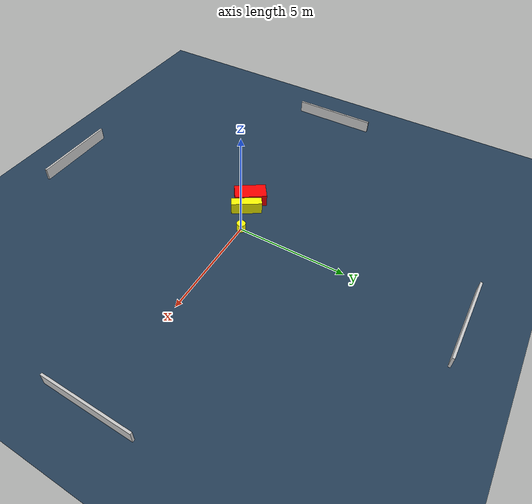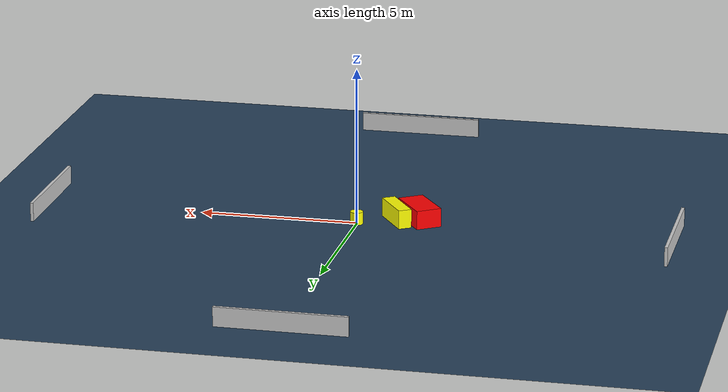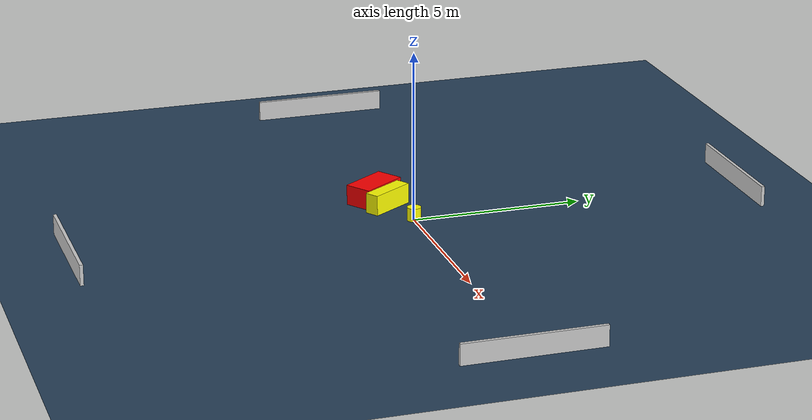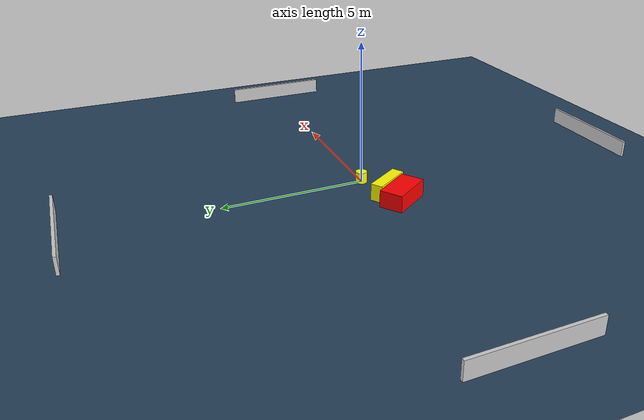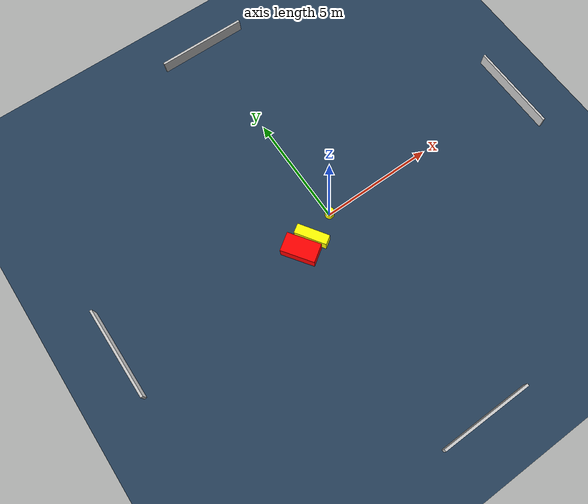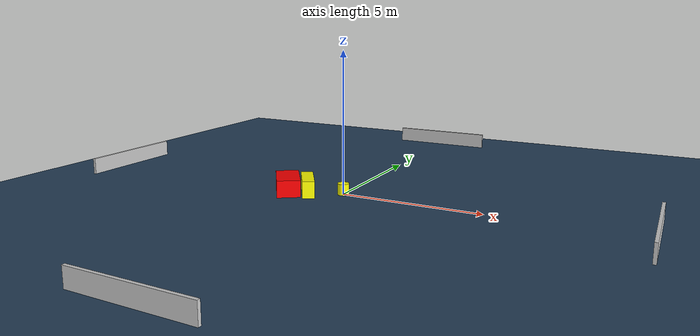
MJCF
<?xml version="1.0" ?>
<mujoco model="generated_environment">
  <option timestep="0.01" integrator="RK4" cone="elliptic"/>
  <default>
    <geom density="1"/>
  </default>
  <asset>
    <texture builtin="gradient" height="3072" name="skybox" rgb1="0.3 0.5 0.7" rgb2="0 0 0" type="skybox" width="512"/>
    <texture builtin="checker" height="300" name="groundplane" rgb1="0.2 0.3 0.4" rgb2="0.1 0.2 0.3" type="2d" width="300"/>
    <material name="groundplane" reflectance="0.2" texrepeat="5 5" texture="groundplane"/>
  </asset>
  <worldbody>
    <light dir="0 0 -1" directional="true" pos="0 0 1.5"/>
    <geom condim="3" friction="0.5 0.005 0.001" material="groundplane" name="floor" pos="0 0 0" size="0 0 0.05" type="plane"/>
    <body name="walls">
      <geom name="wall_1" condim="4" pos="-10.0 0.0 0.3" rgba="0.800000011920929 0.800000011920929 0.800000011920929 1.0" size="0.05 2.0 0.3" type="box"/>
      <geom name="wall_2" condim="4" pos="10.0 0.0 0.3" rgba="0.800000011920929 0.800000011920929 0.800000011920929 1.0" size="0.05 2.0 0.3" type="box"/>
      <geom name="wall_3" condim="4" pos="0.0 -10.0 0.3" rgba="0.800000011920929 0.800000011920929 0.800000011920929 1.0" size="2.0 0.05 0.3" type="box"/>
      <geom name="wall_4" condim="4" pos="0.0 10.0 0.3" rgba="0.800000011920929 0.800000011920929 0.800000011920929 1.0" size="2.0 0.05 0.3" type="box"/>
    </body>
    <body name="robot">
      <joint name="joint_x" type="slide" pos="0 0 0" axis="1 0 0"/>
      <joint name="joint_y" type="slide" pos="0 0 0" axis="0 1 0"/>
      <geom name="robot" type="cylinder" pos="0.0 0.0 0.2" size="0.2 0.2 0.0" mass="5.0" friction="1.0 0.005 0.0001" condim="4" rgba="1.0 1.0 0.0 1.0"/>
    </body>
    <body name="obstacle_1_movable">
      <geom name="obstacle_1_movable" condim="4" pos="-1.191511003271002 -0.43549435186137203 0.3" euler="0 0 123.25297756730517" friction="0.0 0.005 0.001" rgba="1.0 1.0 0.0 1.0" size="0.707881995504464 0.2128519352565578 0.3" type="box" mass="0.1"/>
      <joint type="free"/>
    </body>
    <body name="obstacle_2_static">
      <geom name="obstacle_2_static" condim="4" pos="-1.8829468420326987 -0.6361234670097651 0.3" euler="0 0 34.58195251518398" friction="0.0 0.005 0.001" rgba="1.0 0.0 0.0 1.0" size="0.4115953509528945 0.7439040869916331 0.3" type="box"/>
    </body>
  </worldbody>
  <actuator>
    <motor name="actuator_x" joint="joint_x" gear="1" ctrlrange="-1 1"/>
    <motor name="actuator_y" joint="joint_y" gear="1" ctrlrange="-1 1"/>
  </actuator>
</mujoco>
